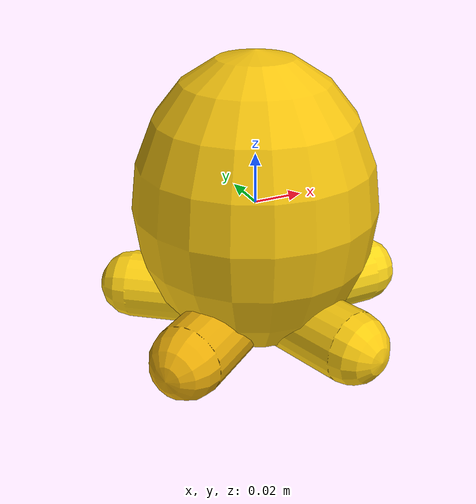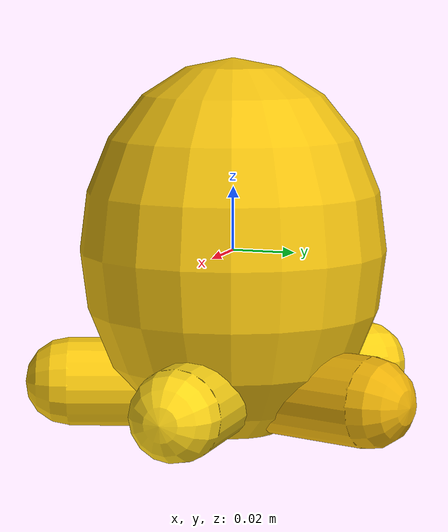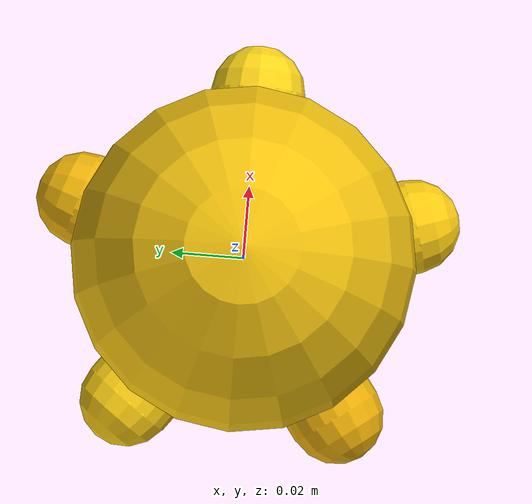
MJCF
<mujoco model="unitree_multitask_starfruit">
  <asset/>
  <worldbody>
    <body>
      <body name="object">
        <geom class="visual" type="ellipsoid" pos="0 0 0" size="0.048 0.048 0.060" rgba="0.96 0.77 0.06 1"/>
        <geom class="visual" type="capsule" fromto="0 0 -0.042 0.052 0 -0.042" size="0.014" rgba="1.0 0.84 0.09 1"/>
        <geom class="visual" type="capsule" fromto="0 0 -0.042 0.016 0.049 -0.042" size="0.014" rgba="0.93 0.70 0.03 1"/>
        <geom class="visual" type="capsule" fromto="0 0 -0.042 -0.042 0.031 -0.042" size="0.014" rgba="1.0 0.82 0.07 1"/>
        <geom class="visual" type="capsule" fromto="0 0 -0.042 -0.042 -0.031 -0.042" size="0.014" rgba="0.92 0.68 0.03 1"/>
        <geom class="visual" type="capsule" fromto="0 0 -0.042 0.016 -0.049 -0.042" size="0.014" rgba="0.99 0.80 0.06 1"/>
        <geom class="collision" type="ellipsoid" pos="0 0 0" size="0.055 0.055 0.060"/>
      </body>
      <site rgba="0 0 0 0" size="0.005" pos="0 0 -0.060" name="bottom_site"/>
      <site rgba="0 0 0 0" size="0.005" pos="0 0 0.060" name="top_site"/>
      <site rgba="0 0 0 0" size="0.005" pos="0.068 0.068 0" name="horizontal_radius_site"/>
    </body>
  </worldbody>
  <default>
    <default class="visual"><geom group="1" contype="0" conaffinity="0" density="85"/></default>
    <default class="collision"><geom group="0" rgba="1 1 1 0" density="85" friction="1.2 0.3 0.1"/></default>
  </default>
</mujoco>
